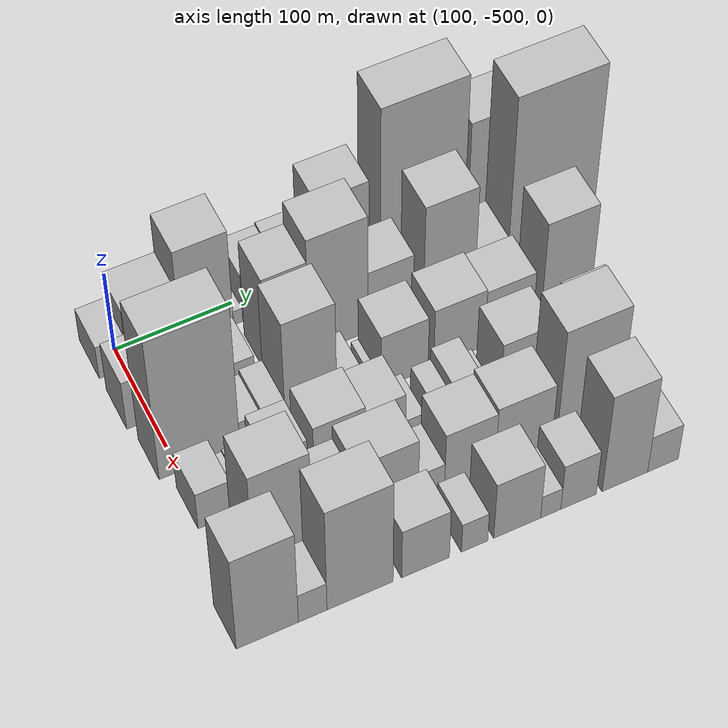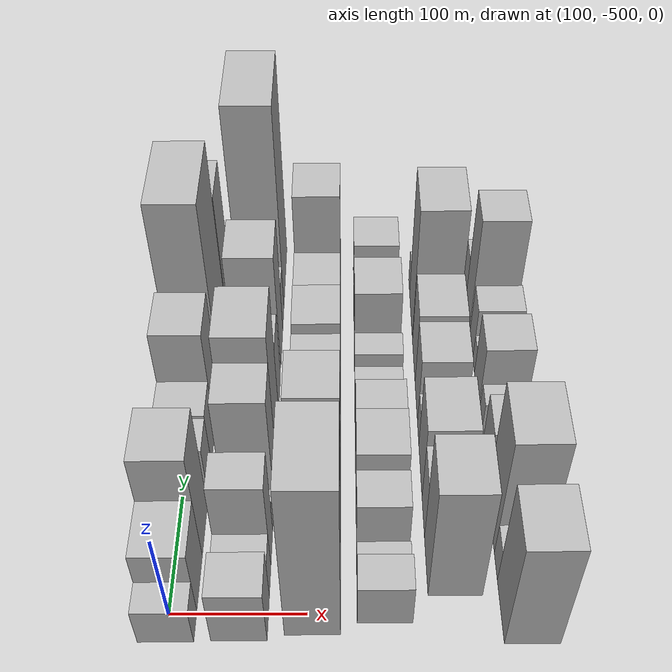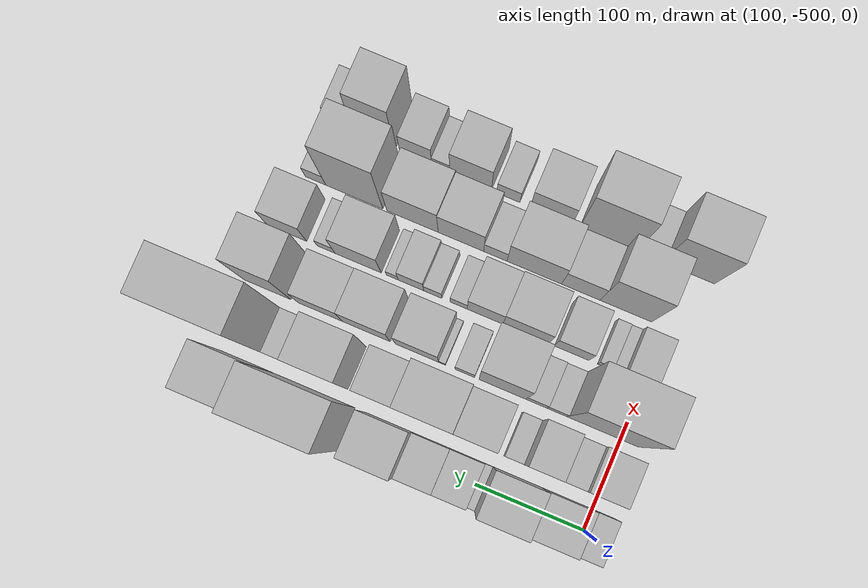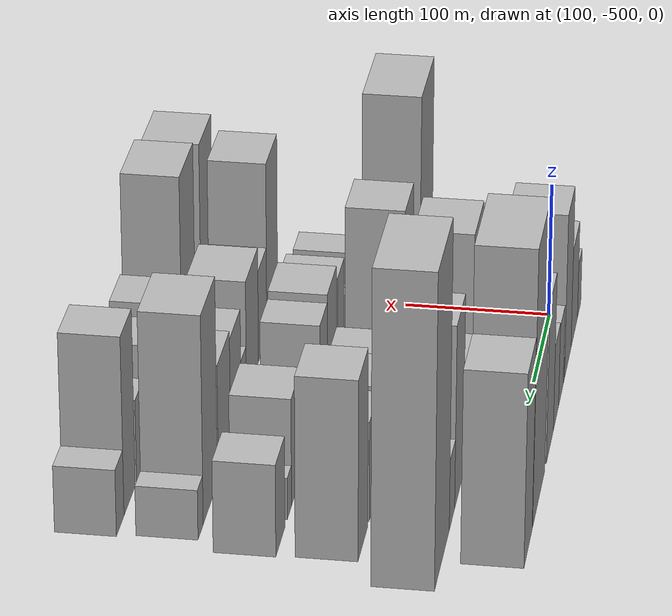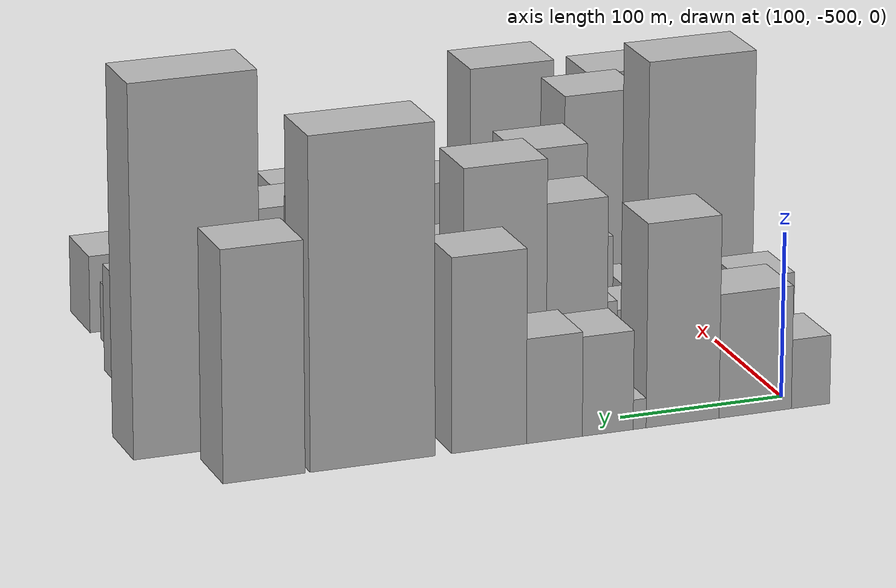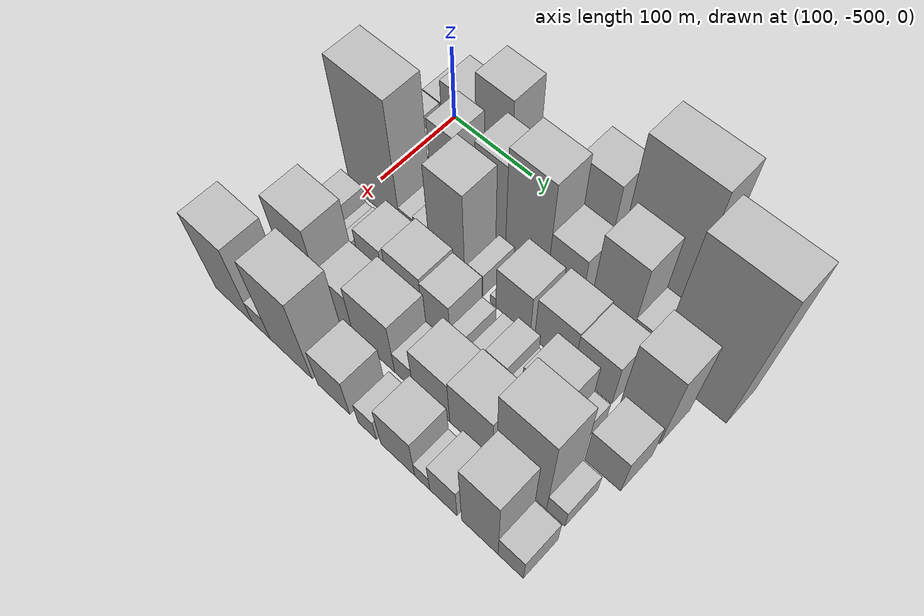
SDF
<sdf version="1.6">
 <world name="default">
  <model name="building_12">
   <static>1</static>
   <pose>100.0000 -509.4019 0 0.000000 0.000000 0.000000</pose>
   <link name="link">
    <pose>0 0 21.00 0 0 0</pose>
    <collision name="collision"><geometry><box><size>40.0000 23.9750 42.0000</size></box></geometry></collision>
    <visual name="visual">
     <cast_shadows>0</cast_shadows>
     <geometry><box><size>40.0000 23.9750 42.0000</size></box></geometry>
     <material>
      <script>
       <uri>model://HANNAS_wall/materials/scripts</uri>
       <uri>model://HANNAS_wall/materials/textures</uri>
       <name>vrc/HANNAS_wall</name>
      </script>
     </material>
    </visual>
   </link>
  </model>
  <model name="building_13">
   <static>1</static>
   <pose>100.0000 -474.9482 0 0.000000 0.000000 0.000000</pose>
   <link name="link">
    <pose>0 0 37.50 0 0 0</pose>
    <collision name="collision"><geometry><box><size>40.0000 44.9325 75.0000</size></box></geometry></collision>
    <visual name="visual">
     <cast_shadows>0</cast_shadows>
     <geometry><box><size>40.0000 44.9325 75.0000</size></box></geometry>
     <material>
      <script>
       <uri>model://HANNAS_wall/materials/scripts</uri>
       <uri>model://HANNAS_wall/materials/textures</uri>
       <name>vrc/HANNAS_wall</name>
      </script>
     </material>
    </visual>
   </link>
  </model>
  <model name="building_14">
   <static>1</static>
   <pose>100.0000 -430.0063 0 0.000000 0.000000 0.000000</pose>
   <link name="link">
    <pose>0 0 61.50 0 0 0</pose>
    <collision name="collision"><geometry><box><size>40.0000 44.9513 123.0000</size></box></geometry></collision>
    <visual name="visual">
     <cast_shadows>0</cast_shadows>
     <geometry><box><size>40.0000 44.9513 123.0000</size></box></geometry>
     <material>
      <script>
       <uri>model://HANNAS_wall/materials/scripts</uri>
       <uri>model://HANNAS_wall/materials/textures</uri>
       <name>vrc/HANNAS_wall</name>
      </script>
     </material>
    </visual>
   </link>
  </model>
  <model name="building_15">
   <static>1</static>
   <pose>100.0000 -403.5633 0 0.000000 0.000000 0.000000</pose>
   <link name="link">
    <pose>0 0 9.00 0 0 0</pose>
    <collision name="collision"><geometry><box><size>40.0000 7.9347 18.0000</size></box></geometry></collision>
    <visual name="visual">
     <cast_shadows>0</cast_shadows>
     <geometry><box><size>40.0000 7.9347 18.0000</size></box></geometry>
     <material>
      <script>
       <uri>model://HANNAS_wall/materials/scripts</uri>
       <uri>model://HANNAS_wall/materials/textures</uri>
       <name>vrc/HANNAS_wall</name>
      </script>
     </material>
    </visual>
   </link>
  </model>
  <model name="building_16">
   <static>1</static>
   <pose>100.0000 -384.0746 0 0.000000 0.000000 0.000000</pose>
   <link name="link">
    <pose>0 0 30.00 0 0 0</pose>
    <collision name="collision"><geometry><box><size>40.0000 31.0427 60.0000</size></box></geometry></collision>
    <visual name="visual">
     <cast_shadows>0</cast_shadows>
     <geometry><box><size>40.0000 31.0427 60.0000</size></box></geometry>
     <material>
      <script>
       <uri>model://HANNAS_wall/materials/scripts</uri>
       <uri>model://HANNAS_wall/materials/textures</uri>
       <name>vrc/HANNAS_wall</name>
      </script>
     </material>
    </visual>
   </link>
  </model>
  <model name="building_17">
   <static>1</static>
   <pose>100.0000 -351.5795 0 0.000000 0.000000 0.000000</pose>
   <link name="link">
    <pose>0 0 31.50 0 0 0</pose>
    <collision name="collision"><geometry><box><size>40.0000 33.9475 63.0000</size></box></geometry></collision>
    <visual name="visual">
     <cast_shadows>0</cast_shadows>
     <geometry><box><size>40.0000 33.9475 63.0000</size></box></geometry>
     <material>
      <script>
       <uri>model://HANNAS_wall/materials/scripts</uri>
       <uri>model://HANNAS_wall/materials/textures</uri>
       <name>vrc/HANNAS_wall</name>
      </script>
     </material>
    </visual>
   </link>
  </model>
  <model name="building_18">
   <static>1</static>
   <pose>100.0000 -312.0746 0 0.000000 0.000000 0.000000</pose>
   <link name="link">
    <pose>0 0 58.50 0 0 0</pose>
    <collision name="collision"><geometry><box><size>40.0000 45.0622 117.0000</size></box></geometry></collision>
    <visual name="visual">
     <cast_shadows>0</cast_shadows>
     <geometry><box><size>40.0000 45.0622 117.0000</size></box></geometry>
     <material>
      <script>
       <uri>model://HANNAS_wall/materials/scripts</uri>
       <uri>model://HANNAS_wall/materials/textures</uri>
       <name>vrc/HANNAS_wall</name>
      </script>
     </material>
    </visual>
   </link>
  </model>
  <model name="building_19">
   <static>1</static>
   <pose>100.0000 -242.4100 0 0.000000 0.000000 0.000000</pose>
   <link name="link">
    <pose>0 0 99.00 0 0 0</pose>
    <collision name="collision"><geometry><box><size>40.0000 74.2670 198.0000</size></box></geometry></collision>
    <visual name="visual">
     <cast_shadows>0</cast_shadows>
     <geometry><box><size>40.0000 74.2670 198.0000</size></box></geometry>
     <material>
      <script>
       <uri>model://HANNAS_wall/materials/scripts</uri>
       <uri>model://HANNAS_wall/materials/textures</uri>
       <name>vrc/HANNAS_wall</name>
      </script>
     </material>
    </visual>
   </link>
  </model>
  <model name="building_20">
   <static>1</static>
   <pose>100.0000 -178.1504 0 0.000000 0.000000 0.000000</pose>
   <link name="link">
    <pose>0 0 69.00 0 0 0</pose>
    <collision name="collision"><geometry><box><size>40.0000 48.2522 138.0000</size></box></geometry></collision>
    <visual name="visual">
     <cast_shadows>0</cast_shadows>
     <geometry><box><size>40.0000 48.2522 138.0000</size></box></geometry>
     <material>
      <script>
       <uri>model://HANNAS_wall/materials/scripts</uri>
       <uri>model://HANNAS_wall/materials/textures</uri>
       <name>vrc/HANNAS_wall</name>
      </script>
     </material>
    </visual>
   </link>
  </model>
  <model name="building_58">
   <static>1</static>
   <pose>152.0000 -503.3788 0 0.000000 0.000000 0.000000</pose>
   <link name="link">
    <pose>0 0 31.50 0 0 0</pose>
    <collision name="collision"><geometry><box><size>40.0000 34.4218 63.0000</size></box></geometry></collision>
    <visual name="visual">
     <cast_shadows>0</cast_shadows>
     <geometry><box><size>40.0000 34.4218 63.0000</size></box></geometry>
     <material>
      <script>
       <uri>model://HANNAS_wall/materials/scripts</uri>
       <uri>model://HANNAS_wall/materials/textures</uri>
       <name>vrc/HANNAS_wall</name>
      </script>
     </material>
    </visual>
   </link>
  </model>
  <model name="building_59">
   <static>1</static>
   <pose>152.0000 -473.6498 0 0.000000 0.000000 0.000000</pose>
   <link name="link">
    <pose>0 0 22.50 0 0 0</pose>
    <collision name="collision"><geometry><box><size>40.0000 25.0362 45.0000</size></box></geometry></collision>
    <visual name="visual">
     <cast_shadows>0</cast_shadows>
     <geometry><box><size>40.0000 25.0362 45.0000</size></box></geometry>
     <material>
      <script>
       <uri>model://HANNAS_wall/materials/scripts</uri>
       <uri>model://HANNAS_wall/materials/textures</uri>
       <name>vrc/HANNAS_wall</name>
      </script>
     </material>
    </visual>
   </link>
  </model>
  <model name="building_60">
   <static>1</static>
   <pose>152.0000 -445.7451 0 0.000000 0.000000 0.000000</pose>
   <link name="link">
    <pose>0 0 51.00 0 0 0</pose>
    <collision name="collision"><geometry><box><size>40.0000 30.7733 102.0000</size></box></geometry></collision>
    <visual name="visual">
     <cast_shadows>0</cast_shadows>
     <geometry><box><size>40.0000 30.7733 102.0000</size></box></geometry>
     <material>
      <script>
       <uri>model://HANNAS_wall/materials/scripts</uri>
       <uri>model://HANNAS_wall/materials/textures</uri>
       <name>vrc/HANNAS_wall</name>
      </script>
     </material>
    </visual>
   </link>
  </model>
  <model name="building_61">
   <static>1</static>
   <pose>152.0000 -421.6134 0 0.000000 0.000000 0.000000</pose>
   <link name="link">
    <pose>0 0 15.00 0 0 0</pose>
    <collision name="collision"><geometry><box><size>40.0000 17.4900 30.0000</size></box></geometry></collision>
    <visual name="visual">
     <cast_shadows>0</cast_shadows>
     <geometry><box><size>40.0000 17.4900 30.0000</size></box></geometry>
     <material>
      <script>
       <uri>model://HANNAS_wall/materials/scripts</uri>
       <uri>model://HANNAS_wall/materials/textures</uri>
       <name>vrc/HANNAS_wall</name>
      </script>
     </material>
    </visual>
   </link>
  </model>
  <model name="building_62">
   <static>1</static>
   <pose>152.0000 -385.2024 0 0.000000 0.000000 0.000000</pose>
   <link name="link">
    <pose>0 0 61.50 0 0 0</pose>
    <collision name="collision"><geometry><box><size>40.0000 37.3320 123.0000</size></box></geometry></collision>
    <visual name="visual">
     <cast_shadows>0</cast_shadows>
     <geometry><box><size>40.0000 37.3320 123.0000</size></box></geometry>
     <material>
      <script>
       <uri>model://HANNAS_wall/materials/scripts</uri>
       <uri>model://HANNAS_wall/materials/textures</uri>
       <name>vrc/HANNAS_wall</name>
      </script>
     </material>
    </visual>
   </link>
  </model>
  <model name="building_63">
   <static>1</static>
   <pose>152.0000 -341.1898 0 0.000000 0.000000 0.000000</pose>
   <link name="link">
    <pose>0 0 75.00 0 0 0</pose>
    <collision name="collision"><geometry><box><size>40.0000 50.6930 150.0000</size></box></geometry></collision>
    <visual name="visual">
     <cast_shadows>0</cast_shadows>
     <geometry><box><size>40.0000 50.6930 150.0000</size></box></geometry>
     <material>
      <script>
       <uri>model://HANNAS_wall/materials/scripts</uri>
       <uri>model://HANNAS_wall/materials/textures</uri>
       <name>vrc/HANNAS_wall</name>
      </script>
     </material>
    </visual>
   </link>
  </model>
  <model name="building_64">
   <static>1</static>
   <pose>152.0000 -296.1780 0 0.000000 0.000000 0.000000</pose>
   <link name="link">
    <pose>0 0 39.00 0 0 0</pose>
    <collision name="collision"><geometry><box><size>40.0000 39.3307 78.0000</size></box></geometry></collision>
    <visual name="visual">
     <cast_shadows>0</cast_shadows>
     <geometry><box><size>40.0000 39.3307 78.0000</size></box></geometry>
     <material>
      <script>
       <uri>model://HANNAS_wall/materials/scripts</uri>
       <uri>model://HANNAS_wall/materials/textures</uri>
       <name>vrc/HANNAS_wall</name>
      </script>
     </material>
    </visual>
   </link>
  </model>
  <model name="building_65">
   <static>1</static>
   <pose>152.0000 -244.8266 0 0.000000 0.000000 0.000000</pose>
   <link name="link">
    <pose>0 0 66.00 0 0 0</pose>
    <collision name="collision"><geometry><box><size>40.0000 45.3722 132.0000</size></box></geometry></collision>
    <visual name="visual">
     <cast_shadows>0</cast_shadows>
     <geometry><box><size>40.0000 45.3722 132.0000</size></box></geometry>
     <material>
      <script>
       <uri>model://HANNAS_wall/materials/scripts</uri>
       <uri>model://HANNAS_wall/materials/textures</uri>
       <name>vrc/HANNAS_wall</name>
      </script>
     </material>
    </visual>
   </link>
  </model>
  <model name="building_66">
   <static>1</static>
   <pose>152.0000 -207.9065 0 0.000000 0.000000 0.000000</pose>
   <link name="link">
    <pose>0 0 25.50 0 0 0</pose>
    <collision name="collision"><geometry><box><size>40.0000 28.4680 51.0000</size></box></geometry></collision>
    <visual name="visual">
     <cast_shadows>0</cast_shadows>
     <geometry><box><size>40.0000 28.4680 51.0000</size></box></geometry>
     <material>
      <script>
       <uri>model://HANNAS_wall/materials/scripts</uri>
       <uri>model://HANNAS_wall/materials/textures</uri>
       <name>vrc/HANNAS_wall</name>
      </script>
     </material>
    </visual>
   </link>
  </model>
  <model name="building_67">
   <static>1</static>
   <pose>152.0000 -155.9516 0 0.000000 0.000000 0.000000</pose>
   <link name="link">
    <pose>0 0 111.00 0 0 0</pose>
    <collision name="collision"><geometry><box><size>40.0000 75.4418 222.0000</size></box></geometry></collision>
    <visual name="visual">
     <cast_shadows>0</cast_shadows>
     <geometry><box><size>40.0000 75.4418 222.0000</size></box></geometry>
     <material>
      <script>
       <uri>model://HANNAS_wall/materials/scripts</uri>
       <uri>model://HANNAS_wall/materials/textures</uri>
       <name>vrc/HANNAS_wall</name>
      </script>
     </material>
    </visual>
   </link>
  </model>
  <model name="building_113">
   <static>1</static>
   <pose>204.0000 -482.9187 0 0.000000 0.000000 0.000000</pose>
   <link name="link">
    <pose>0 0 91.50 0 0 0</pose>
    <collision name="collision"><geometry><box><size>40.0000 66.8726 183.0000</size></box></geometry></collision>
    <visual name="visual">
     <cast_shadows>0</cast_shadows>
     <geometry><box><size>40.0000 66.8726 183.0000</size></box></geometry>
     <material>
      <script>
       <uri>model://HANNAS_wall/materials/scripts</uri>
       <uri>model://HANNAS_wall/materials/textures</uri>
       <name>vrc/HANNAS_wall</name>
      </script>
     </material>
    </visual>
   </link>
  </model>
  <model name="building_114">
   <static>1</static>
   <pose>204.0000 -440.1525 0 0.000000 0.000000 0.000000</pose>
   <link name="link">
    <pose>0 0 16.50 0 0 0</pose>
    <collision name="collision"><geometry><box><size>40.0000 18.6598 33.0000</size></box></geometry></collision>
    <visual name="visual">
     <cast_shadows>0</cast_shadows>
     <geometry><box><size>40.0000 18.6598 33.0000</size></box></geometry>
     <material>
      <script>
       <uri>model://HANNAS_wall/materials/scripts</uri>
       <uri>model://HANNAS_wall/materials/textures</uri>
       <name>vrc/HANNAS_wall</name>
      </script>
     </material>
    </visual>
   </link>
  </model>
  <model name="building_115">
   <static>1</static>
   <pose>204.0000 -421.0551 0 0.000000 0.000000 0.000000</pose>
   <link name="link">
    <pose>0 0 19.50 0 0 0</pose>
    <collision name="collision"><geometry><box><size>40.0000 19.5350 39.0000</size></box></geometry></collision>
    <visual name="visual">
     <cast_shadows>0</cast_shadows>
     <geometry><box><size>40.0000 19.5350 39.0000</size></box></geometry>
     <material>
      <script>
       <uri>model://HANNAS_wall/materials/scripts</uri>
       <uri>model://HANNAS_wall/materials/textures</uri>
       <name>vrc/HANNAS_wall</name>
      </script>
     </material>
    </visual>
   </link>
  </model>
  <model name="building_116">
   <static>1</static>
   <pose>204.0000 -389.5066 0 0.000000 0.000000 0.000000</pose>
   <link name="link">
    <pose>0 0 69.00 0 0 0</pose>
    <collision name="collision"><geometry><box><size>40.0000 43.5620 138.0000</size></box></geometry></collision>
    <visual name="visual">
     <cast_shadows>0</cast_shadows>
     <geometry><box><size>40.0000 43.5620 138.0000</size></box></geometry>
     <material>
      <script>
       <uri>model://HANNAS_wall/materials/scripts</uri>
       <uri>model://HANNAS_wall/materials/textures</uri>
       <name>vrc/HANNAS_wall</name>
      </script>
     </material>
    </visual>
   </link>
  </model>
  <model name="building_117">
   <static>1</static>
   <pose>204.0000 -354.6735 0 0.000000 0.000000 0.000000</pose>
   <link name="link">
    <pose>0 0 18.00 0 0 0</pose>
    <collision name="collision"><geometry><box><size>40.0000 18.1043 36.0000</size></box></geometry></collision>
    <visual name="visual">
     <cast_shadows>0</cast_shadows>
     <geometry><box><size>40.0000 18.1043 36.0000</size></box></geometry>
     <material>
      <script>
       <uri>model://HANNAS_wall/materials/scripts</uri>
       <uri>model://HANNAS_wall/materials/textures</uri>
       <name>vrc/HANNAS_wall</name>
      </script>
     </material>
    </visual>
   </link>
  </model>
  <model name="building_118">
   <static>1</static>
   <pose>204.0000 -333.4183 0 0.000000 0.000000 0.000000</pose>
   <link name="link">
    <pose>0 0 7.50 0 0 0</pose>
    <collision name="collision"><geometry><box><size>40.0000 6.4059 15.0000</size></box></geometry></collision>
    <visual name="visual">
     <cast_shadows>0</cast_shadows>
     <geometry><box><size>40.0000 6.4059 15.0000</size></box></geometry>
     <material>
      <script>
       <uri>model://HANNAS_wall/materials/scripts</uri>
       <uri>model://HANNAS_wall/materials/textures</uri>
       <name>vrc/HANNAS_wall</name>
      </script>
     </material>
    </visual>
   </link>
  </model>
  <model name="building_119">
   <static>1</static>
   <pose>204.0000 -309.9843 0 0.000000 0.000000 0.000000</pose>
   <link name="link">
    <pose>0 0 34.50 0 0 0</pose>
    <collision name="collision"><geometry><box><size>40.0000 40.4622 69.0000</size></box></geometry></collision>
    <visual name="visual">
     <cast_shadows>0</cast_shadows>
     <geometry><box><size>40.0000 40.4622 69.0000</size></box></geometry>
     <material>
      <script>
       <uri>model://HANNAS_wall/materials/scripts</uri>
       <uri>model://HANNAS_wall/materials/textures</uri>
       <name>vrc/HANNAS_wall</name>
      </script>
     </material>
    </visual>
   </link>
  </model>
  <model name="building_120">
   <static>1</static>
   <pose>204.0000 -262.5022 0 0.000000 0.000000 0.000000</pose>
   <link name="link">
    <pose>0 0 37.50 0 0 0</pose>
    <collision name="collision"><geometry><box><size>40.0000 44.5020 75.0000</size></box></geometry></collision>
    <visual name="visual">
     <cast_shadows>0</cast_shadows>
     <geometry><box><size>40.0000 44.5020 75.0000</size></box></geometry>
     <material>
      <script>
       <uri>model://HANNAS_wall/materials/scripts</uri>
       <uri>model://HANNAS_wall/materials/textures</uri>
       <name>vrc/HANNAS_wall</name>
      </script>
     </material>
    </visual>
   </link>
  </model>
  <model name="building_121">
   <static>1</static>
   <pose>204.0000 -219.2029 0 0.000000 0.000000 0.000000</pose>
   <link name="link">
    <pose>0 0 36.00 0 0 0</pose>
    <collision name="collision"><geometry><box><size>40.0000 42.0965 72.0000</size></box></geometry></collision>
    <visual name="visual">
     <cast_shadows>0</cast_shadows>
     <geometry><box><size>40.0000 42.0965 72.0000</size></box></geometry>
     <material>
      <script>
       <uri>model://HANNAS_wall/materials/scripts</uri>
       <uri>model://HANNAS_wall/materials/textures</uri>
       <name>vrc/HANNAS_wall</name>
      </script>
     </material>
    </visual>
   </link>
  </model>
  <model name="building_122">
   <static>1</static>
   <pose>204.0000 -169.1336 0 0.000000 0.000000 0.000000</pose>
   <link name="link">
    <pose>0 0 64.50 0 0 0</pose>
    <collision name="collision"><geometry><box><size>40.0000 44.0420 129.0000</size></box></geometry></collision>
    <visual name="visual">
     <cast_shadows>0</cast_shadows>
     <geometry><box><size>40.0000 44.0420 129.0000</size></box></geometry>
     <material>
      <script>
       <uri>model://HANNAS_wall/materials/scripts</uri>
       <uri>model://HANNAS_wall/materials/textures</uri>
       <name>vrc/HANNAS_wall</name>
      </script>
     </material>
    </visual>
   </link>
  </model>
  <model name="building_165">
   <static>1</static>
   <pose>256.0000 -493.4022 0 0.000000 0.000000 0.000000</pose>
   <link name="link">
    <pose>0 0 24.00 0 0 0</pose>
    <collision name="collision"><geometry><box><size>40.0000 28.0651 48.0000</size></box></geometry></collision>
    <visual name="visual">
     <cast_shadows>0</cast_shadows>
     <geometry><box><size>40.0000 28.0651 48.0000</size></box></geometry>
     <material>
      <script>
       <uri>model://HANNAS_wall/materials/scripts</uri>
       <uri>model://HANNAS_wall/materials/textures</uri>
       <name>vrc/HANNAS_wall</name>
      </script>
     </material>
    </visual>
   </link>
  </model>
  <model name="building_166">
   <static>1</static>
   <pose>256.0000 -474.2865 0 0.000000 0.000000 0.000000</pose>
   <link name="link">
    <pose>0 0 12.00 0 0 0</pose>
    <collision name="collision"><geometry><box><size>40.0000 10.1662 24.0000</size></box></geometry></collision>
    <visual name="visual">
     <cast_shadows>0</cast_shadows>
     <geometry><box><size>40.0000 10.1662 24.0000</size></box></geometry>
     <material>
      <script>
       <uri>model://HANNAS_wall/materials/scripts</uri>
       <uri>model://HANNAS_wall/materials/textures</uri>
       <name>vrc/HANNAS_wall</name>
      </script>
     </material>
    </visual>
   </link>
  </model>
  <model name="building_167">
   <static>1</static>
   <pose>256.0000 -462.9312 0 0.000000 0.000000 0.000000</pose>
   <link name="link">
    <pose>0 0 13.50 0 0 0</pose>
    <collision name="collision"><geometry><box><size>40.0000 12.5445 27.0000</size></box></geometry></collision>
    <visual name="visual">
     <cast_shadows>0</cast_shadows>
     <geometry><box><size>40.0000 12.5445 27.0000</size></box></geometry>
     <material>
      <script>
       <uri>model://HANNAS_wall/materials/scripts</uri>
       <uri>model://HANNAS_wall/materials/textures</uri>
       <name>vrc/HANNAS_wall</name>
      </script>
     </material>
    </visual>
   </link>
  </model>
  <model name="building_168">
   <static>1</static>
   <pose>256.0000 -432.6425 0 0.000000 0.000000 0.000000</pose>
   <link name="link">
    <pose>0 0 30.00 0 0 0</pose>
    <collision name="collision"><geometry><box><size>40.0000 32.0329 60.0000</size></box></geometry></collision>
    <visual name="visual">
     <cast_shadows>0</cast_shadows>
     <geometry><box><size>40.0000 32.0329 60.0000</size></box></geometry>
     <material>
      <script>
       <uri>model://HANNAS_wall/materials/scripts</uri>
       <uri>model://HANNAS_wall/materials/textures</uri>
       <name>vrc/HANNAS_wall</name>
      </script>
     </material>
    </visual>
   </link>
  </model>
  <model name="building_169">
   <static>1</static>
   <pose>256.0000 -390.0916 0 0.000000 0.000000 0.000000</pose>
   <link name="link">
    <pose>0 0 36.00 0 0 0</pose>
    <collision name="collision"><geometry><box><size>40.0000 43.0690 72.0000</size></box></geometry></collision>
    <visual name="visual">
     <cast_shadows>0</cast_shadows>
     <geometry><box><size>40.0000 43.0690 72.0000</size></box></geometry>
     <material>
      <script>
       <uri>model://HANNAS_wall/materials/scripts</uri>
       <uri>model://HANNAS_wall/materials/textures</uri>
       <name>vrc/HANNAS_wall</name>
      </script>
     </material>
    </visual>
   </link>
  </model>
  <model name="building_170">
   <static>1</static>
   <pose>256.0000 -351.7991 0 0.000000 0.000000 0.000000</pose>
   <link name="link">
    <pose>0 0 33.00 0 0 0</pose>
    <collision name="collision"><geometry><box><size>40.0000 33.5160 66.0000</size></box></geometry></collision>
    <visual name="visual">
     <cast_shadows>0</cast_shadows>
     <geometry><box><size>40.0000 33.5160 66.0000</size></box></geometry>
     <material>
      <script>
       <uri>model://HANNAS_wall/materials/scripts</uri>
       <uri>model://HANNAS_wall/materials/textures</uri>
       <name>vrc/HANNAS_wall</name>
      </script>
     </material>
    </visual>
   </link>
  </model>
  <model name="building_171">
   <static>1</static>
   <pose>256.0000 -326.9942 0 0.000000 0.000000 0.000000</pose>
   <link name="link">
    <pose>0 0 15.00 0 0 0</pose>
    <collision name="collision"><geometry><box><size>40.0000 16.0937 30.0000</size></box></geometry></collision>
    <visual name="visual">
     <cast_shadows>0</cast_shadows>
     <geometry><box><size>40.0000 16.0937 30.0000</size></box></geometry>
     <material>
      <script>
       <uri>model://HANNAS_wall/materials/scripts</uri>
       <uri>model://HANNAS_wall/materials/textures</uri>
       <name>vrc/HANNAS_wall</name>
      </script>
     </material>
    </visual>
   </link>
  </model>
  <model name="building_172">
   <static>1</static>
   <pose>256.0000 -302.5593 0 0.000000 0.000000 0.000000</pose>
   <link name="link">
    <pose>0 0 16.50 0 0 0</pose>
    <collision name="collision"><geometry><box><size>40.0000 16.7760 33.0000</size></box></geometry></collision>
    <visual name="visual">
     <cast_shadows>0</cast_shadows>
     <geometry><box><size>40.0000 16.7760 33.0000</size></box></geometry>
     <material>
      <script>
       <uri>model://HANNAS_wall/materials/scripts</uri>
       <uri>model://HANNAS_wall/materials/textures</uri>
       <name>vrc/HANNAS_wall</name>
      </script>
     </material>
    </visual>
   </link>
  </model>
  <model name="building_173">
   <static>1</static>
   <pose>256.0000 -282.0974 0 0.000000 0.000000 0.000000</pose>
   <link name="link">
    <pose>0 0 24.00 0 0 0</pose>
    <collision name="collision"><geometry><box><size>40.0000 24.1479 48.0000</size></box></geometry></collision>
    <visual name="visual">
     <cast_shadows>0</cast_shadows>
     <geometry><box><size>40.0000 24.1479 48.0000</size></box></geometry>
     <material>
      <script>
       <uri>model://HANNAS_wall/materials/scripts</uri>
       <uri>model://HANNAS_wall/materials/textures</uri>
       <name>vrc/HANNAS_wall</name>
      </script>
     </material>
    </visual>
   </link>
  </model>
  <model name="building_174">
   <static>1</static>
   <pose>256.0000 -264.4604 0 0.000000 0.000000 0.000000</pose>
   <link name="link">
    <pose>0 0 12.00 0 0 0</pose>
    <collision name="collision"><geometry><box><size>40.0000 11.1260 24.0000</size></box></geometry></collision>
    <visual name="visual">
     <cast_shadows>0</cast_shadows>
     <geometry><box><size>40.0000 11.1260 24.0000</size></box></geometry>
     <material>
      <script>
       <uri>model://HANNAS_wall/materials/scripts</uri>
       <uri>model://HANNAS_wall/materials/textures</uri>
       <name>vrc/HANNAS_wall</name>
      </script>
     </material>
    </visual>
   </link>
  </model>
  <model name="building_175">
   <static>1</static>
   <pose>256.0000 -232.0703 0 0.000000 0.000000 0.000000</pose>
   <link name="link">
    <pose>0 0 39.00 0 0 0</pose>
    <collision name="collision"><geometry><box><size>40.0000 43.6542 78.0000</size></box></geometry></collision>
    <visual name="visual">
     <cast_shadows>0</cast_shadows>
     <geometry><box><size>40.0000 43.6542 78.0000</size></box></geometry>
     <material>
      <script>
       <uri>model://HANNAS_wall/materials/scripts</uri>
       <uri>model://HANNAS_wall/materials/textures</uri>
       <name>vrc/HANNAS_wall</name>
      </script>
     </material>
    </visual>
   </link>
  </model>
  <model name="building_176">
   <static>1</static>
   <pose>256.0000 -201.7927 0 0.000000 0.000000 0.000000</pose>
   <link name="link">
    <pose>0 0 15.00 0 0 0</pose>
    <collision name="collision"><geometry><box><size>40.0000 16.9010 30.0000</size></box></geometry></collision>
    <visual name="visual">
     <cast_shadows>0</cast_shadows>
     <geometry><box><size>40.0000 16.9010 30.0000</size></box></geometry>
     <material>
      <script>
       <uri>model://HANNAS_wall/materials/scripts</uri>
       <uri>model://HANNAS_wall/materials/textures</uri>
       <name>vrc/HANNAS_wall</name>
      </script>
     </material>
    </visual>
   </link>
  </model>
  <model name="building_177">
   <static>1</static>
   <pose>256.0000 -164.3860 0 0.000000 0.000000 0.000000</pose>
   <link name="link">
    <pose>0 0 33.00 0 0 0</pose>
    <collision name="collision"><geometry><box><size>40.0000 37.9124 66.0000</size></box></geometry></collision>
    <visual name="visual">
     <cast_shadows>0</cast_shadows>
     <geometry><box><size>40.0000 37.9124 66.0000</size></box></geometry>
     <material>
      <script>
       <uri>model://HANNAS_wall/materials/scripts</uri>
       <uri>model://HANNAS_wall/materials/textures</uri>
       <name>vrc/HANNAS_wall</name>
      </script>
     </material>
    </visual>
   </link>
  </model>
  <model name="building_222">
   <static>1</static>
   <pose>308.0000 -461.8113 0 0.000000 0.000000 0.000000</pose>
   <link name="link">
    <pose>0 0 66.00 0 0 0</pose>
    <collision name="collision"><geometry><box><size>40.0000 48.1520 132.0000</size></box></geometry></collision>
    <visual name="visual">
     <cast_shadows>0</cast_shadows>
     <geometry><box><size>40.0000 48.1520 132.0000</size></box></geometry>
     <material>
      <script>
       <uri>model://HANNAS_wall/materials/scripts</uri>
       <uri>model://HANNAS_wall/materials/textures</uri>
       <name>vrc/HANNAS_wall</name>
      </script>
     </material>
    </visual>
   </link>
  </model>
  <model name="building_223">
   <static>1</static>
   <pose>308.0000 -419.6143 0 0.000000 0.000000 0.000000</pose>
   <link name="link">
    <pose>0 0 34.50 0 0 0</pose>
    <collision name="collision"><geometry><box><size>40.0000 36.2420 69.0000</size></box></geometry></collision>
    <visual name="visual">
     <cast_shadows>0</cast_shadows>
     <geometry><box><size>40.0000 36.2420 69.0000</size></box></geometry>
     <material>
      <script>
       <uri>model://HANNAS_wall/materials/scripts</uri>
       <uri>model://HANNAS_wall/materials/textures</uri>
       <name>vrc/HANNAS_wall</name>
      </script>
     </material>
    </visual>
   </link>
  </model>
  <model name="building_224">
   <static>1</static>
   <pose>308.0000 -375.9273 0 0.000000 0.000000 0.000000</pose>
   <link name="link">
    <pose>0 0 43.50 0 0 0</pose>
    <collision name="collision"><geometry><box><size>40.0000 51.1322 87.0000</size></box></geometry></collision>
    <visual name="visual">
     <cast_shadows>0</cast_shadows>
     <geometry><box><size>40.0000 51.1322 87.0000</size></box></geometry>
     <material>
      <script>
       <uri>model://HANNAS_wall/materials/scripts</uri>
       <uri>model://HANNAS_wall/materials/textures</uri>
       <name>vrc/HANNAS_wall</name>
      </script>
     </material>
    </visual>
   </link>
  </model>
  <model name="building_225">
   <static>1</static>
   <pose>308.0000 -339.3525 0 0.000000 0.000000 0.000000</pose>
   <link name="link">
    <pose>0 0 19.50 0 0 0</pose>
    <collision name="collision"><geometry><box><size>40.0000 22.0174 39.0000</size></box></geometry></collision>
    <visual name="visual">
     <cast_shadows>0</cast_shadows>
     <geometry><box><size>40.0000 22.0174 39.0000</size></box></geometry>
     <material>
      <script>
       <uri>model://HANNAS_wall/materials/scripts</uri>
       <uri>model://HANNAS_wall/materials/textures</uri>
       <name>vrc/HANNAS_wall</name>
      </script>
     </material>
    </visual>
   </link>
  </model>
  <model name="building_226">
   <static>1</static>
   <pose>308.0000 -306.8683 0 0.000000 0.000000 0.000000</pose>
   <link name="link">
    <pose>0 0 39.00 0 0 0</pose>
    <collision name="collision"><geometry><box><size>40.0000 42.9511 78.0000</size></box></geometry></collision>
    <visual name="visual">
     <cast_shadows>0</cast_shadows>
     <geometry><box><size>40.0000 42.9511 78.0000</size></box></geometry>
     <material>
      <script>
       <uri>model://HANNAS_wall/materials/scripts</uri>
       <uri>model://HANNAS_wall/materials/textures</uri>
       <name>vrc/HANNAS_wall</name>
      </script>
     </material>
    </visual>
   </link>
  </model>
  <model name="building_227">
   <static>1</static>
   <pose>308.0000 -261.1753 0 0.000000 0.000000 0.000000</pose>
   <link name="link">
    <pose>0 0 42.00 0 0 0</pose>
    <collision name="collision"><geometry><box><size>40.0000 48.4351 84.0000</size></box></geometry></collision>
    <visual name="visual">
     <cast_shadows>0</cast_shadows>
     <geometry><box><size>40.0000 48.4351 84.0000</size></box></geometry>
     <material>
      <script>
       <uri>model://HANNAS_wall/materials/scripts</uri>
       <uri>model://HANNAS_wall/materials/textures</uri>
       <name>vrc/HANNAS_wall</name>
      </script>
     </material>
    </visual>
   </link>
  </model>
  <model name="building_228">
   <static>1</static>
   <pose>308.0000 -205.8463 0 0.000000 0.000000 0.000000</pose>
   <link name="link">
    <pose>0 0 75.00 0 0 0</pose>
    <collision name="collision"><geometry><box><size>40.0000 54.2229 150.0000</size></box></geometry></collision>
    <visual name="visual">
     <cast_shadows>0</cast_shadows>
     <geometry><box><size>40.0000 54.2229 150.0000</size></box></geometry>
     <material>
      <script>
       <uri>model://HANNAS_wall/materials/scripts</uri>
       <uri>model://HANNAS_wall/materials/textures</uri>
       <name>vrc/HANNAS_wall</name>
      </script>
     </material>
    </visual>
   </link>
  </model>
  <model name="building_229">
   <static>1</static>
   <pose>308.0000 -169.0041 0 0.000000 0.000000 0.000000</pose>
   <link name="link">
    <pose>0 0 18.00 0 0 0</pose>
    <collision name="collision"><geometry><box><size>40.0000 19.4614 36.0000</size></box></geometry></collision>
    <visual name="visual">
     <cast_shadows>0</cast_shadows>
     <geometry><box><size>40.0000 19.4614 36.0000</size></box></geometry>
     <material>
      <script>
       <uri>model://HANNAS_wall/materials/scripts</uri>
       <uri>model://HANNAS_wall/materials/textures</uri>
       <name>vrc/HANNAS_wall</name>
      </script>
     </material>
    </visual>
   </link>
  </model>
  <model name="building_266">
   <static>1</static>
   <pose>360.0000 -498.7216 0 0.000000 0.000000 0.000000</pose>
   <link name="link">
    <pose>0 0 63.00 0 0 0</pose>
    <collision name="collision"><geometry><box><size>40.0000 49.7174 126.0000</size></box></geometry></collision>
    <visual name="visual">
     <cast_shadows>0</cast_shadows>
     <geometry><box><size>40.0000 49.7174 126.0000</size></box></geometry>
     <material>
      <script>
       <uri>model://HANNAS_wall/materials/scripts</uri>
       <uri>model://HANNAS_wall/materials/textures</uri>
       <name>vrc/HANNAS_wall</name>
      </script>
     </material>
    </visual>
   </link>
  </model>
  <model name="building_267">
   <static>1</static>
   <pose>360.0000 -462.3080 0 0.000000 0.000000 0.000000</pose>
   <link name="link">
    <pose>0 0 19.50 0 0 0</pose>
    <collision name="collision"><geometry><box><size>40.0000 23.1099 39.0000</size></box></geometry></collision>
    <visual name="visual">
     <cast_shadows>0</cast_shadows>
     <geometry><box><size>40.0000 23.1099 39.0000</size></box></geometry>
     <material>
      <script>
       <uri>model://HANNAS_wall/materials/scripts</uri>
       <uri>model://HANNAS_wall/materials/textures</uri>
       <name>vrc/HANNAS_wall</name>
      </script>
     </material>
    </visual>
   </link>
  </model>
  <model name="building_268">
   <static>1</static>
   <pose>360.0000 -423.8763 0 0.000000 0.000000 0.000000</pose>
   <link name="link">
    <pose>0 0 69.00 0 0 0</pose>
    <collision name="collision"><geometry><box><size>40.0000 53.7535 138.0000</size></box></geometry></collision>
    <visual name="visual">
     <cast_shadows>0</cast_shadows>
     <geometry><box><size>40.0000 53.7535 138.0000</size></box></geometry>
     <material>
      <script>
       <uri>model://HANNAS_wall/materials/scripts</uri>
       <uri>model://HANNAS_wall/materials/textures</uri>
       <name>vrc/HANNAS_wall</name>
      </script>
     </material>
    </visual>
   </link>
  </model>
  <model name="building_269">
   <static>1</static>
   <pose>360.0000 -370.2868 0 0.000000 0.000000 0.000000</pose>
   <link name="link">
    <pose>0 0 33.00 0 0 0</pose>
    <collision name="collision"><geometry><box><size>40.0000 39.4256 66.0000</size></box></geometry></collision>
    <visual name="visual">
     <cast_shadows>0</cast_shadows>
     <geometry><box><size>40.0000 39.4256 66.0000</size></box></geometry>
     <material>
      <script>
       <uri>model://HANNAS_wall/materials/scripts</uri>
       <uri>model://HANNAS_wall/materials/textures</uri>
       <name>vrc/HANNAS_wall</name>
      </script>
     </material>
    </visual>
   </link>
  </model>
  <model name="building_270">
   <static>1</static>
   <pose>360.0000 -329.6023 0 0.000000 0.000000 0.000000</pose>
   <link name="link">
    <pose>0 0 19.50 0 0 0</pose>
    <collision name="collision"><geometry><box><size>40.0000 21.9434 39.0000</size></box></geometry></collision>
    <visual name="visual">
     <cast_shadows>0</cast_shadows>
     <geometry><box><size>40.0000 21.9434 39.0000</size></box></geometry>
     <material>
      <script>
       <uri>model://HANNAS_wall/materials/scripts</uri>
       <uri>model://HANNAS_wall/materials/textures</uri>
       <name>vrc/HANNAS_wall</name>
      </script>
     </material>
    </visual>
   </link>
  </model>
  <model name="building_271">
   <static>1</static>
   <pose>360.0000 -293.9063 0 0.000000 0.000000 0.000000</pose>
   <link name="link">
    <pose>0 0 37.50 0 0 0</pose>
    <collision name="collision"><geometry><box><size>40.0000 39.4486 75.0000</size></box></geometry></collision>
    <visual name="visual">
     <cast_shadows>0</cast_shadows>
     <geometry><box><size>40.0000 39.4486 75.0000</size></box></geometry>
     <material>
      <script>
       <uri>model://HANNAS_wall/materials/scripts</uri>
       <uri>model://HANNAS_wall/materials/textures</uri>
       <name>vrc/HANNAS_wall</name>
      </script>
     </material>
    </visual>
   </link>
  </model>
  <model name="building_272">
   <static>1</static>
   <pose>360.0000 -265.6594 0 0.000000 0.000000 0.000000</pose>
   <link name="link">
    <pose>0 0 15.00 0 0 0</pose>
    <collision name="collision"><geometry><box><size>40.0000 17.0451 30.0000</size></box></geometry></collision>
    <visual name="visual">
     <cast_shadows>0</cast_shadows>
     <geometry><box><size>40.0000 17.0451 30.0000</size></box></geometry>
     <material>
      <script>
       <uri>model://HANNAS_wall/materials/scripts</uri>
       <uri>model://HANNAS_wall/materials/textures</uri>
       <name>vrc/HANNAS_wall</name>
      </script>
     </material>
    </visual>
   </link>
  </model>
  <model name="building_273">
   <static>1</static>
   <pose>360.0000 -242.0008 0 0.000000 0.000000 0.000000</pose>
   <link name="link">
    <pose>0 0 30.00 0 0 0</pose>
    <collision name="collision"><geometry><box><size>40.0000 30.2721 60.0000</size></box></geometry></collision>
    <visual name="visual">
     <cast_shadows>0</cast_shadows>
     <geometry><box><size>40.0000 30.2721 60.0000</size></box></geometry>
     <material>
      <script>
       <uri>model://HANNAS_wall/materials/scripts</uri>
       <uri>model://HANNAS_wall/materials/textures</uri>
       <name>vrc/HANNAS_wall</name>
      </script>
     </material>
    </visual>
   </link>
  </model>
  <model name="building_274">
   <static>1</static>
   <pose>360.0000 -202.2934 0 0.000000 0.000000 0.000000</pose>
   <link name="link">
    <pose>0 0 64.50 0 0 0</pose>
    <collision name="collision"><geometry><box><size>40.0000 39.1428 129.0000</size></box></geometry></collision>
    <visual name="visual">
     <cast_shadows>0</cast_shadows>
     <geometry><box><size>40.0000 39.1428 129.0000</size></box></geometry>
     <material>
      <script>
       <uri>model://HANNAS_wall/materials/scripts</uri>
       <uri>model://HANNAS_wall/materials/textures</uri>
       <name>vrc/HANNAS_wall</name>
      </script>
     </material>
    </visual>
   </link>
  </model>
  <model name="building_275">
   <static>1</static>
   <pose>360.0000 -169.4776 0 0.000000 0.000000 0.000000</pose>
   <link name="link">
    <pose>0 0 24.00 0 0 0</pose>
    <collision name="collision"><geometry><box><size>40.0000 26.4887 48.0000</size></box></geometry></collision>
    <visual name="visual">
     <cast_shadows>0</cast_shadows>
     <geometry><box><size>40.0000 26.4887 48.0000</size></box></geometry>
     <material>
      <script>
       <uri>model://HANNAS_wall/materials/scripts</uri>
       <uri>model://HANNAS_wall/materials/textures</uri>
       <name>vrc/HANNAS_wall</name>
      </script>
     </material>
    </visual>
   </link>
  </model>
 </world>
</sdf>
